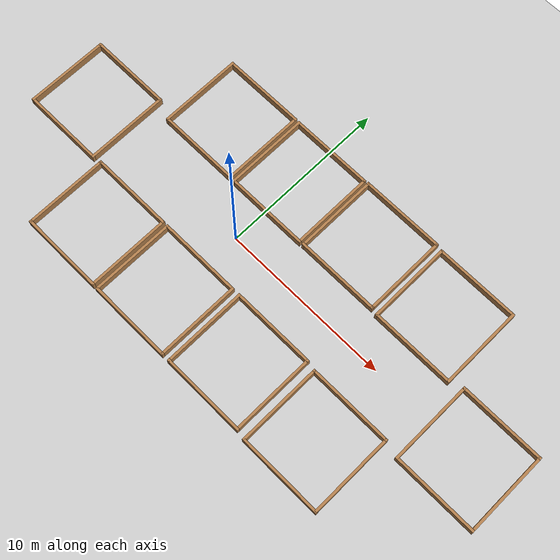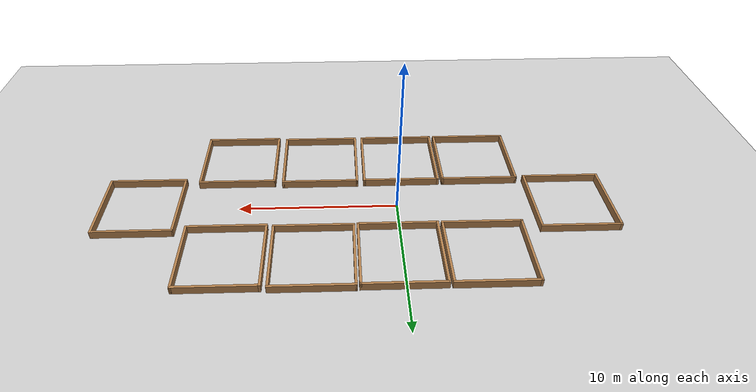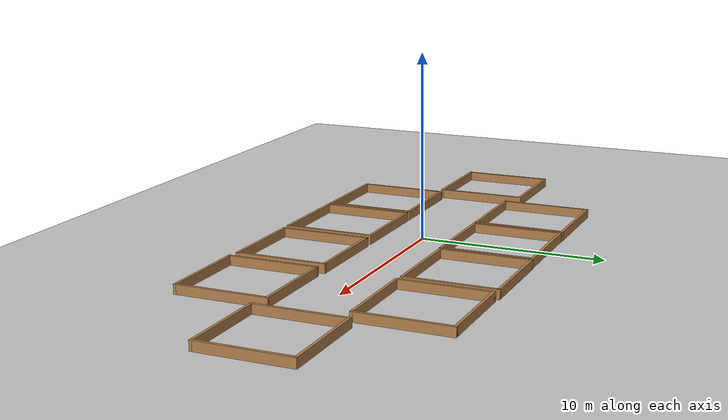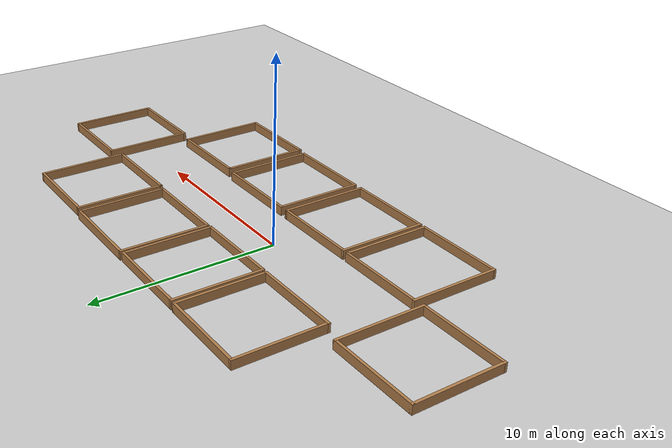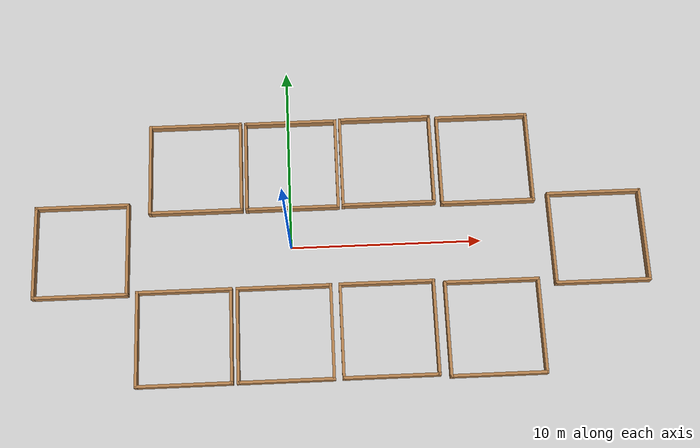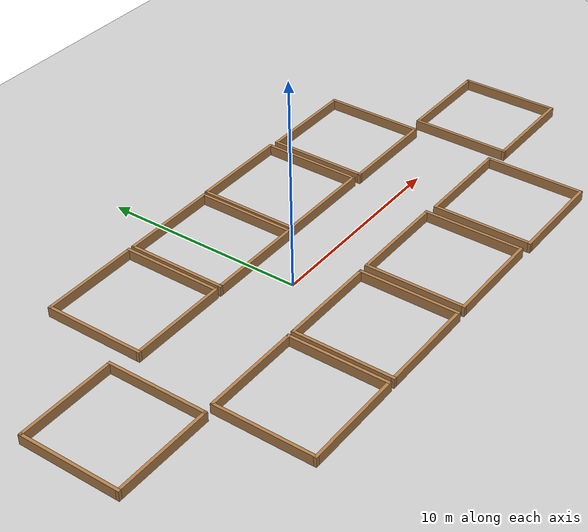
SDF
<sdf version="1.7">
 <world name="default">
  <model name="ground_plane">
   <static>1</static>
   <link name="link">
    <collision name="collision">
     <geometry><plane><normal>0 0 1</normal><size>100 100</size></plane></geometry>
     <surface><friction><ode><mu>100</mu><mu2>50</mu2></ode></friction></surface>
    </collision>
    <visual name="visual">
     <cast_shadows>0</cast_shadows>
     <geometry><plane><normal>0 0 1</normal><size>100 100</size></plane></geometry>
     <material>
      <script><uri>file://media/materials/scripts/gazebo.material</uri><name>Gazebo/Grey</name></script>
     </material>
    </visual>
   </link>
  </model>
  <light name="sun" type="directional">
   <pose>0 0 10 0 -0 0</pose>
   <diffuse>0.8 0.8 0.8 1</diffuse>
   <specular>0.2 0.2 0.2 1</specular>
   <attenuation>
    <range>1000</range>
    <constant>0.9</constant>
    <linear>0.01</linear>
    <quadratic>0.001</quadratic>
   </attenuation>
   <direction>-0.5 0.1 -0.9</direction>
   <spot><inner_angle>0</inner_angle><outer_angle>0</outer_angle><falloff>0</falloff></spot>
  </light>
  <scene><shadows>0</shadows><ambient>0.4 0.4 0.4 1</ambient><background>0.7 0.7 0.7 1</background></scene>
  <physics type="ode">
   <real_time_update_rate>1000</real_time_update_rate>
   <max_step_size>0.001</max_step_size>
   <real_time_factor>1</real_time_factor>
   <ode>
    <solver>
     <type>quick</type>
     <iters>150</iters>
     <precon_iters>0</precon_iters>
     <sor>1.4</sor>
     <use_dynamic_moi_rescaling>1</use_dynamic_moi_rescaling>
    </solver>
    <constraints>
     <cfm>1e-05</cfm>
     <erp>0.2</erp>
     <contact_max_correcting_vel>2000</contact_max_correcting_vel>
     <contact_surface_layer>0.01</contact_surface_layer>
    </constraints>
   </ode>
  </physics>
  <gravity>0 0 -9.8</gravity>
  <magnetic_field>6e-06 2.3e-05 -4.2e-05</magnetic_field>
  <atmosphere type="adiabatic"/>
  <spherical_coordinates>
   <surface_model>EARTH_WGS84</surface_model>
   <latitude_deg>0</latitude_deg>
   <longitude_deg>0</longitude_deg>
   <elevation>0</elevation>
   <heading_deg>0</heading_deg>
  </spherical_coordinates>
  <model name="turtlebot3_square">
   <pose>0.136843 4.53374 0 0 -0 0</pose>
   <link name="Wall_1">
    <collision name="Wall_1_Collision">
     <geometry><box><size>5 0.15 0.5</size></box></geometry>
     <pose>0 0 0.25 0 -0 0</pose>
    </collision>
    <visual name="Wall_1_Visual">
     <pose>0 0 0.25 0 -0 0</pose>
     <geometry><box><size>5 0.15 0.5</size></box></geometry>
     <material>
      <script><uri>file://media/materials/scripts/gazebo.material</uri><name>Gazebo/Wood</name></script>
      <ambient>1 1 1 1</ambient>
     </material>
    </visual>
    <pose>-2.425 0 0 0 -0 1.5708</pose>
   </link>
   <link name="Wall_2">
    <collision name="Wall_2_Collision">
     <geometry><box><size>5 0.15 0.5</size></box></geometry>
     <pose>0 0 0.25 0 -0 0</pose>
    </collision>
    <visual name="Wall_2_Visual">
     <pose>0 0 0.25 0 -0 0</pose>
     <geometry><box><size>5 0.15 0.5</size></box></geometry>
     <material>
      <script><uri>file://media/materials/scripts/gazebo.material</uri><name>Gazebo/Wood</name></script>
      <ambient>1 1 1 1</ambient>
     </material>
    </visual>
    <pose>0 2.425 0 0 -0 0</pose>
   </link>
   <link name="Wall_3">
    <collision name="Wall_3_Collision">
     <geometry><box><size>5 0.15 0.5</size></box></geometry>
     <pose>0 0 0.25 0 -0 0</pose>
    </collision>
    <visual name="Wall_3_Visual">
     <pose>0 0 0.25 0 -0 0</pose>
     <geometry><box><size>5 0.15 0.5</size></box></geometry>
     <material>
      <script><uri>file://media/materials/scripts/gazebo.material</uri><name>Gazebo/Wood</name></script>
      <ambient>1 1 1 1</ambient>
     </material>
    </visual>
    <pose>2.425 0 0 0 0 -1.5708</pose>
   </link>
   <link name="Wall_4">
    <collision name="Wall_4_Collision">
     <geometry><box><size>5 0.15 0.5</size></box></geometry>
     <pose>0 0 0.25 0 -0 0</pose>
    </collision>
    <visual name="Wall_4_Visual">
     <pose>0 0 0.25 0 -0 0</pose>
     <geometry><box><size>5 0.15 0.5</size></box></geometry>
     <material>
      <script><uri>file://media/materials/scripts/gazebo.material</uri><name>Gazebo/Wood</name></script>
      <ambient>1 1 1 1</ambient>
     </material>
    </visual>
    <pose>0 -2.425 0 0 -0 3.14159</pose>
   </link>
   <static>1</static>
  </model>
  <model name="turtlebot3_square_0">
   <pose>5.24502 4.57343 0 0 -0 0</pose>
   <link name="Wall_1">
    <collision name="Wall_1_Collision">
     <geometry><box><size>5 0.15 0.5</size></box></geometry>
     <pose>0 0 0.25 0 -0 0</pose>
    </collision>
    <visual name="Wall_1_Visual">
     <pose>0 0 0.25 0 -0 0</pose>
     <geometry><box><size>5 0.15 0.5</size></box></geometry>
     <material>
      <script><uri>file://media/materials/scripts/gazebo.material</uri><name>Gazebo/Wood</name></script>
      <ambient>1 1 1 1</ambient>
     </material>
    </visual>
    <pose>-2.425 0 0 0 -0 1.5708</pose>
   </link>
   <link name="Wall_2">
    <collision name="Wall_2_Collision">
     <geometry><box><size>5 0.15 0.5</size></box></geometry>
     <pose>0 0 0.25 0 -0 0</pose>
    </collision>
    <visual name="Wall_2_Visual">
     <pose>0 0 0.25 0 -0 0</pose>
     <geometry><box><size>5 0.15 0.5</size></box></geometry>
     <material>
      <script><uri>file://media/materials/scripts/gazebo.material</uri><name>Gazebo/Wood</name></script>
      <ambient>1 1 1 1</ambient>
     </material>
    </visual>
    <pose>0 2.425 0 0 -0 0</pose>
   </link>
   <link name="Wall_3">
    <collision name="Wall_3_Collision">
     <geometry><box><size>5 0.15 0.5</size></box></geometry>
     <pose>0 0 0.25 0 -0 0</pose>
    </collision>
    <visual name="Wall_3_Visual">
     <pose>0 0 0.25 0 -0 0</pose>
     <geometry><box><size>5 0.15 0.5</size></box></geometry>
     <material>
      <script><uri>file://media/materials/scripts/gazebo.material</uri><name>Gazebo/Wood</name></script>
      <ambient>1 1 1 1</ambient>
     </material>
    </visual>
    <pose>2.425 0 0 0 0 -1.5708</pose>
   </link>
   <link name="Wall_4">
    <collision name="Wall_4_Collision">
     <geometry><box><size>5 0.15 0.5</size></box></geometry>
     <pose>0 0 0.25 0 -0 0</pose>
    </collision>
    <visual name="Wall_4_Visual">
     <pose>0 0 0.25 0 -0 0</pose>
     <geometry><box><size>5 0.15 0.5</size></box></geometry>
     <material>
      <script><uri>file://media/materials/scripts/gazebo.material</uri><name>Gazebo/Wood</name></script>
      <ambient>1 1 1 1</ambient>
     </material>
    </visual>
    <pose>0 -2.425 0 0 -0 3.14159</pose>
   </link>
   <static>1</static>
  </model>
  <model name="turtlebot3_square_1">
   <pose>-4.9986 4.54813 0 0 -0 0</pose>
   <link name="Wall_1">
    <collision name="Wall_1_Collision">
     <geometry><box><size>5 0.15 0.5</size></box></geometry>
     <pose>0 0 0.25 0 -0 0</pose>
    </collision>
    <visual name="Wall_1_Visual">
     <pose>0 0 0.25 0 -0 0</pose>
     <geometry><box><size>5 0.15 0.5</size></box></geometry>
     <material>
      <script><uri>file://media/materials/scripts/gazebo.material</uri><name>Gazebo/Wood</name></script>
      <ambient>1 1 1 1</ambient>
     </material>
    </visual>
    <pose>-2.425 0 0 0 -0 1.5708</pose>
   </link>
   <link name="Wall_2">
    <collision name="Wall_2_Collision">
     <geometry><box><size>5 0.15 0.5</size></box></geometry>
     <pose>0 0 0.25 0 -0 0</pose>
    </collision>
    <visual name="Wall_2_Visual">
     <pose>0 0 0.25 0 -0 0</pose>
     <geometry><box><size>5 0.15 0.5</size></box></geometry>
     <material>
      <script><uri>file://media/materials/scripts/gazebo.material</uri><name>Gazebo/Wood</name></script>
      <ambient>1 1 1 1</ambient>
     </material>
    </visual>
    <pose>0 2.425 0 0 -0 0</pose>
   </link>
   <link name="Wall_3">
    <collision name="Wall_3_Collision">
     <geometry><box><size>5 0.15 0.5</size></box></geometry>
     <pose>0 0 0.25 0 -0 0</pose>
    </collision>
    <visual name="Wall_3_Visual">
     <pose>0 0 0.25 0 -0 0</pose>
     <geometry><box><size>5 0.15 0.5</size></box></geometry>
     <material>
      <script><uri>file://media/materials/scripts/gazebo.material</uri><name>Gazebo/Wood</name></script>
      <ambient>1 1 1 1</ambient>
     </material>
    </visual>
    <pose>2.425 0 0 0 0 -1.5708</pose>
   </link>
   <link name="Wall_4">
    <collision name="Wall_4_Collision">
     <geometry><box><size>5 0.15 0.5</size></box></geometry>
     <pose>0 0 0.25 0 -0 0</pose>
    </collision>
    <visual name="Wall_4_Visual">
     <pose>0 0 0.25 0 -0 0</pose>
     <geometry><box><size>5 0.15 0.5</size></box></geometry>
     <material>
      <script><uri>file://media/materials/scripts/gazebo.material</uri><name>Gazebo/Wood</name></script>
      <ambient>1 1 1 1</ambient>
     </material>
    </visual>
    <pose>0 -2.425 0 0 -0 3.14159</pose>
   </link>
   <static>1</static>
  </model>
  <model name="turtlebot3_square_2">
   <pose>4.90179 -4.56461 0 0 -0 0</pose>
   <link name="Wall_1">
    <collision name="Wall_1_Collision">
     <geometry><box><size>5 0.15 0.5</size></box></geometry>
     <pose>0 0 0.25 0 -0 0</pose>
    </collision>
    <visual name="Wall_1_Visual">
     <pose>0 0 0.25 0 -0 0</pose>
     <geometry><box><size>5 0.15 0.5</size></box></geometry>
     <material>
      <script><uri>file://media/materials/scripts/gazebo.material</uri><name>Gazebo/Wood</name></script>
      <ambient>1 1 1 1</ambient>
     </material>
    </visual>
    <pose>-2.425 0 0 0 -0 1.5708</pose>
   </link>
   <link name="Wall_2">
    <collision name="Wall_2_Collision">
     <geometry><box><size>5 0.15 0.5</size></box></geometry>
     <pose>0 0 0.25 0 -0 0</pose>
    </collision>
    <visual name="Wall_2_Visual">
     <pose>0 0 0.25 0 -0 0</pose>
     <geometry><box><size>5 0.15 0.5</size></box></geometry>
     <material>
      <script><uri>file://media/materials/scripts/gazebo.material</uri><name>Gazebo/Wood</name></script>
      <ambient>1 1 1 1</ambient>
     </material>
    </visual>
    <pose>0 2.425 0 0 -0 0</pose>
   </link>
   <link name="Wall_3">
    <collision name="Wall_3_Collision">
     <geometry><box><size>5 0.15 0.5</size></box></geometry>
     <pose>0 0 0.25 0 -0 0</pose>
    </collision>
    <visual name="Wall_3_Visual">
     <pose>0 0 0.25 0 -0 0</pose>
     <geometry><box><size>5 0.15 0.5</size></box></geometry>
     <material>
      <script><uri>file://media/materials/scripts/gazebo.material</uri><name>Gazebo/Wood</name></script>
      <ambient>1 1 1 1</ambient>
     </material>
    </visual>
    <pose>2.425 0 0 0 0 -1.5708</pose>
   </link>
   <link name="Wall_4">
    <collision name="Wall_4_Collision">
     <geometry><box><size>5 0.15 0.5</size></box></geometry>
     <pose>0 0 0.25 0 -0 0</pose>
    </collision>
    <visual name="Wall_4_Visual">
     <pose>0 0 0.25 0 -0 0</pose>
     <geometry><box><size>5 0.15 0.5</size></box></geometry>
     <material>
      <script><uri>file://media/materials/scripts/gazebo.material</uri><name>Gazebo/Wood</name></script>
      <ambient>1 1 1 1</ambient>
     </material>
    </visual>
    <pose>0 -2.425 0 0 -0 3.14159</pose>
   </link>
   <static>1</static>
  </model>
  <model name="turtlebot3_square_3">
   <pose>-0.435755 -4.57942 0 0 -0 0</pose>
   <link name="Wall_1">
    <collision name="Wall_1_Collision">
     <geometry><box><size>5 0.15 0.5</size></box></geometry>
     <pose>0 0 0.25 0 -0 0</pose>
    </collision>
    <visual name="Wall_1_Visual">
     <pose>0 0 0.25 0 -0 0</pose>
     <geometry><box><size>5 0.15 0.5</size></box></geometry>
     <material>
      <script><uri>file://media/materials/scripts/gazebo.material</uri><name>Gazebo/Wood</name></script>
      <ambient>1 1 1 1</ambient>
     </material>
    </visual>
    <pose>-2.425 0 0 0 -0 1.5708</pose>
   </link>
   <link name="Wall_2">
    <collision name="Wall_2_Collision">
     <geometry><box><size>5 0.15 0.5</size></box></geometry>
     <pose>0 0 0.25 0 -0 0</pose>
    </collision>
    <visual name="Wall_2_Visual">
     <pose>0 0 0.25 0 -0 0</pose>
     <geometry><box><size>5 0.15 0.5</size></box></geometry>
     <material>
      <script><uri>file://media/materials/scripts/gazebo.material</uri><name>Gazebo/Wood</name></script>
      <ambient>1 1 1 1</ambient>
     </material>
    </visual>
    <pose>0 2.425 0 0 -0 0</pose>
   </link>
   <link name="Wall_3">
    <collision name="Wall_3_Collision">
     <geometry><box><size>5 0.15 0.5</size></box></geometry>
     <pose>0 0 0.25 0 -0 0</pose>
    </collision>
    <visual name="Wall_3_Visual">
     <pose>0 0 0.25 0 -0 0</pose>
     <geometry><box><size>5 0.15 0.5</size></box></geometry>
     <material>
      <script><uri>file://media/materials/scripts/gazebo.material</uri><name>Gazebo/Wood</name></script>
      <ambient>1 1 1 1</ambient>
     </material>
    </visual>
    <pose>2.425 0 0 0 0 -1.5708</pose>
   </link>
   <link name="Wall_4">
    <collision name="Wall_4_Collision">
     <geometry><box><size>5 0.15 0.5</size></box></geometry>
     <pose>0 0 0.25 0 -0 0</pose>
    </collision>
    <visual name="Wall_4_Visual">
     <pose>0 0 0.25 0 -0 0</pose>
     <geometry><box><size>5 0.15 0.5</size></box></geometry>
     <material>
      <script><uri>file://media/materials/scripts/gazebo.material</uri><name>Gazebo/Wood</name></script>
      <ambient>1 1 1 1</ambient>
     </material>
    </visual>
    <pose>0 -2.425 0 0 -0 3.14159</pose>
   </link>
   <static>1</static>
  </model>
  <model name="turtlebot3_square_4">
   <pose>-5.61453 -4.57949 0 0 -0 0</pose>
   <link name="Wall_1">
    <collision name="Wall_1_Collision">
     <geometry><box><size>5 0.15 0.5</size></box></geometry>
     <pose>0 0 0.25 0 -0 0</pose>
    </collision>
    <visual name="Wall_1_Visual">
     <pose>0 0 0.25 0 -0 0</pose>
     <geometry><box><size>5 0.15 0.5</size></box></geometry>
     <material>
      <script><uri>file://media/materials/scripts/gazebo.material</uri><name>Gazebo/Wood</name></script>
      <ambient>1 1 1 1</ambient>
     </material>
    </visual>
    <pose>-2.425 0 0 0 -0 1.5708</pose>
   </link>
   <link name="Wall_2">
    <collision name="Wall_2_Collision">
     <geometry><box><size>5 0.15 0.5</size></box></geometry>
     <pose>0 0 0.25 0 -0 0</pose>
    </collision>
    <visual name="Wall_2_Visual">
     <pose>0 0 0.25 0 -0 0</pose>
     <geometry><box><size>5 0.15 0.5</size></box></geometry>
     <material>
      <script><uri>file://media/materials/scripts/gazebo.material</uri><name>Gazebo/Wood</name></script>
      <ambient>1 1 1 1</ambient>
     </material>
    </visual>
    <pose>0 2.425 0 0 -0 0</pose>
   </link>
   <link name="Wall_3">
    <collision name="Wall_3_Collision">
     <geometry><box><size>5 0.15 0.5</size></box></geometry>
     <pose>0 0 0.25 0 -0 0</pose>
    </collision>
    <visual name="Wall_3_Visual">
     <pose>0 0 0.25 0 -0 0</pose>
     <geometry><box><size>5 0.15 0.5</size></box></geometry>
     <material>
      <script><uri>file://media/materials/scripts/gazebo.material</uri><name>Gazebo/Wood</name></script>
      <ambient>1 1 1 1</ambient>
     </material>
    </visual>
    <pose>2.425 0 0 0 0 -1.5708</pose>
   </link>
   <link name="Wall_4">
    <collision name="Wall_4_Collision">
     <geometry><box><size>5 0.15 0.5</size></box></geometry>
     <pose>0 0 0.25 0 -0 0</pose>
    </collision>
    <visual name="Wall_4_Visual">
     <pose>0 0 0.25 0 -0 0</pose>
     <geometry><box><size>5 0.15 0.5</size></box></geometry>
     <material>
      <script><uri>file://media/materials/scripts/gazebo.material</uri><name>Gazebo/Wood</name></script>
      <ambient>1 1 1 1</ambient>
     </material>
    </visual>
    <pose>0 -2.425 0 0 -0 3.14159</pose>
   </link>
   <static>1</static>
  </model>
  <model name="turtlebot3_square_5">
   <pose>10.5134 4.47502 0 0 -0 0</pose>
   <link name="Wall_1">
    <collision name="Wall_1_Collision">
     <geometry><box><size>5 0.15 0.5</size></box></geometry>
     <pose>0 0 0.25 0 -0 0</pose>
    </collision>
    <visual name="Wall_1_Visual">
     <pose>0 0 0.25 0 -0 0</pose>
     <geometry><box><size>5 0.15 0.5</size></box></geometry>
     <material>
      <script><uri>file://media/materials/scripts/gazebo.material</uri><name>Gazebo/Wood</name></script>
      <ambient>1 1 1 1</ambient>
     </material>
    </visual>
    <pose>-2.425 0 0 0 -0 1.5708</pose>
   </link>
   <link name="Wall_2">
    <collision name="Wall_2_Collision">
     <geometry><box><size>5 0.15 0.5</size></box></geometry>
     <pose>0 0 0.25 0 -0 0</pose>
    </collision>
    <visual name="Wall_2_Visual">
     <pose>0 0 0.25 0 -0 0</pose>
     <geometry><box><size>5 0.15 0.5</size></box></geometry>
     <material>
      <script><uri>file://media/materials/scripts/gazebo.material</uri><name>Gazebo/Wood</name></script>
      <ambient>1 1 1 1</ambient>
     </material>
    </visual>
    <pose>0 2.425 0 0 -0 0</pose>
   </link>
   <link name="Wall_3">
    <collision name="Wall_3_Collision">
     <geometry><box><size>5 0.15 0.5</size></box></geometry>
     <pose>0 0 0.25 0 -0 0</pose>
    </collision>
    <visual name="Wall_3_Visual">
     <pose>0 0 0.25 0 -0 0</pose>
     <geometry><box><size>5 0.15 0.5</size></box></geometry>
     <material>
      <script><uri>file://media/materials/scripts/gazebo.material</uri><name>Gazebo/Wood</name></script>
      <ambient>1 1 1 1</ambient>
     </material>
    </visual>
    <pose>2.425 0 0 0 0 -1.5708</pose>
   </link>
   <link name="Wall_4">
    <collision name="Wall_4_Collision">
     <geometry><box><size>5 0.15 0.5</size></box></geometry>
     <pose>0 0 0.25 0 -0 0</pose>
    </collision>
    <visual name="Wall_4_Visual">
     <pose>0 0 0.25 0 -0 0</pose>
     <geometry><box><size>5 0.15 0.5</size></box></geometry>
     <material>
      <script><uri>file://media/materials/scripts/gazebo.material</uri><name>Gazebo/Wood</name></script>
      <ambient>1 1 1 1</ambient>
     </material>
    </visual>
    <pose>0 -2.425 0 0 -0 3.14159</pose>
   </link>
   <static>1</static>
  </model>
  <model name="turtlebot3_square_6">
   <pose>16.1527 -0.089655 0 0 -0 0</pose>
   <link name="Wall_1">
    <collision name="Wall_1_Collision">
     <geometry><box><size>5 0.15 0.5</size></box></geometry>
     <pose>0 0 0.25 0 -0 0</pose>
    </collision>
    <visual name="Wall_1_Visual">
     <pose>0 0 0.25 0 -0 0</pose>
     <geometry><box><size>5 0.15 0.5</size></box></geometry>
     <material>
      <script><uri>file://media/materials/scripts/gazebo.material</uri><name>Gazebo/Wood</name></script>
      <ambient>1 1 1 1</ambient>
     </material>
    </visual>
    <pose>-2.425 0 0 0 -0 1.5708</pose>
   </link>
   <link name="Wall_2">
    <collision name="Wall_2_Collision">
     <geometry><box><size>5 0.15 0.5</size></box></geometry>
     <pose>0 0 0.25 0 -0 0</pose>
    </collision>
    <visual name="Wall_2_Visual">
     <pose>0 0 0.25 0 -0 0</pose>
     <geometry><box><size>5 0.15 0.5</size></box></geometry>
     <material>
      <script><uri>file://media/materials/scripts/gazebo.material</uri><name>Gazebo/Wood</name></script>
      <ambient>1 1 1 1</ambient>
     </material>
    </visual>
    <pose>0 2.425 0 0 -0 0</pose>
   </link>
   <link name="Wall_3">
    <collision name="Wall_3_Collision">
     <geometry><box><size>5 0.15 0.5</size></box></geometry>
     <pose>0 0 0.25 0 -0 0</pose>
    </collision>
    <visual name="Wall_3_Visual">
     <pose>0 0 0.25 0 -0 0</pose>
     <geometry><box><size>5 0.15 0.5</size></box></geometry>
     <material>
      <script><uri>file://media/materials/scripts/gazebo.material</uri><name>Gazebo/Wood</name></script>
      <ambient>1 1 1 1</ambient>
     </material>
    </visual>
    <pose>2.425 0 0 0 0 -1.5708</pose>
   </link>
   <link name="Wall_4">
    <collision name="Wall_4_Collision">
     <geometry><box><size>5 0.15 0.5</size></box></geometry>
     <pose>0 0 0.25 0 -0 0</pose>
    </collision>
    <visual name="Wall_4_Visual">
     <pose>0 0 0.25 0 -0 0</pose>
     <geometry><box><size>5 0.15 0.5</size></box></geometry>
     <material>
      <script><uri>file://media/materials/scripts/gazebo.material</uri><name>Gazebo/Wood</name></script>
      <ambient>1 1 1 1</ambient>
     </material>
    </visual>
    <pose>0 -2.425 0 0 -0 3.14159</pose>
   </link>
   <static>1</static>
  </model>
  <model name="turtlebot3_square_7">
   <pose>10.3438 -4.68471 0 0 -0 0</pose>
   <link name="Wall_1">
    <collision name="Wall_1_Collision">
     <geometry><box><size>5 0.15 0.5</size></box></geometry>
     <pose>0 0 0.25 0 -0 0</pose>
    </collision>
    <visual name="Wall_1_Visual">
     <pose>0 0 0.25 0 -0 0</pose>
     <geometry><box><size>5 0.15 0.5</size></box></geometry>
     <material>
      <script><uri>file://media/materials/scripts/gazebo.material</uri><name>Gazebo/Wood</name></script>
      <ambient>1 1 1 1</ambient>
     </material>
    </visual>
    <pose>-2.425 0 0 0 -0 1.5708</pose>
   </link>
   <link name="Wall_2">
    <collision name="Wall_2_Collision">
     <geometry><box><size>5 0.15 0.5</size></box></geometry>
     <pose>0 0 0.25 0 -0 0</pose>
    </collision>
    <visual name="Wall_2_Visual">
     <pose>0 0 0.25 0 -0 0</pose>
     <geometry><box><size>5 0.15 0.5</size></box></geometry>
     <material>
      <script><uri>file://media/materials/scripts/gazebo.material</uri><name>Gazebo/Wood</name></script>
      <ambient>1 1 1 1</ambient>
     </material>
    </visual>
    <pose>0 2.425 0 0 -0 0</pose>
   </link>
   <link name="Wall_3">
    <collision name="Wall_3_Collision">
     <geometry><box><size>5 0.15 0.5</size></box></geometry>
     <pose>0 0 0.25 0 -0 0</pose>
    </collision>
    <visual name="Wall_3_Visual">
     <pose>0 0 0.25 0 -0 0</pose>
     <geometry><box><size>5 0.15 0.5</size></box></geometry>
     <material>
      <script><uri>file://media/materials/scripts/gazebo.material</uri><name>Gazebo/Wood</name></script>
      <ambient>1 1 1 1</ambient>
     </material>
    </visual>
    <pose>2.425 0 0 0 0 -1.5708</pose>
   </link>
   <link name="Wall_4">
    <collision name="Wall_4_Collision">
     <geometry><box><size>5 0.15 0.5</size></box></geometry>
     <pose>0 0 0.25 0 -0 0</pose>
    </collision>
    <visual name="Wall_4_Visual">
     <pose>0 0 0.25 0 -0 0</pose>
     <geometry><box><size>5 0.15 0.5</size></box></geometry>
     <material>
      <script><uri>file://media/materials/scripts/gazebo.material</uri><name>Gazebo/Wood</name></script>
      <ambient>1 1 1 1</ambient>
     </material>
    </visual>
    <pose>0 -2.425 0 0 -0 3.14159</pose>
   </link>
   <static>1</static>
  </model>
  <model name="turtlebot3_square_8">
   <pose>-11.0058 0.195838 0 0 -0 0</pose>
   <link name="Wall_1">
    <collision name="Wall_1_Collision">
     <geometry><box><size>5 0.15 0.5</size></box></geometry>
     <pose>0 0 0.25 0 -0 0</pose>
    </collision>
    <visual name="Wall_1_Visual">
     <pose>0 0 0.25 0 -0 0</pose>
     <geometry><box><size>5 0.15 0.5</size></box></geometry>
     <material>
      <script><uri>file://media/materials/scripts/gazebo.material</uri><name>Gazebo/Wood</name></script>
      <ambient>1 1 1 1</ambient>
     </material>
    </visual>
    <pose>-2.425 0 0 0 -0 1.5708</pose>
   </link>
   <link name="Wall_2">
    <collision name="Wall_2_Collision">
     <geometry><box><size>5 0.15 0.5</size></box></geometry>
     <pose>0 0 0.25 0 -0 0</pose>
    </collision>
    <visual name="Wall_2_Visual">
     <pose>0 0 0.25 0 -0 0</pose>
     <geometry><box><size>5 0.15 0.5</size></box></geometry>
     <material>
      <script><uri>file://media/materials/scripts/gazebo.material</uri><name>Gazebo/Wood</name></script>
      <ambient>1 1 1 1</ambient>
     </material>
    </visual>
    <pose>0 2.425 0 0 -0 0</pose>
   </link>
   <link name="Wall_3">
    <collision name="Wall_3_Collision">
     <geometry><box><size>5 0.15 0.5</size></box></geometry>
     <pose>0 0 0.25 0 -0 0</pose>
    </collision>
    <visual name="Wall_3_Visual">
     <pose>0 0 0.25 0 -0 0</pose>
     <geometry><box><size>5 0.15 0.5</size></box></geometry>
     <material>
      <script><uri>file://media/materials/scripts/gazebo.material</uri><name>Gazebo/Wood</name></script>
      <ambient>1 1 1 1</ambient>
     </material>
    </visual>
    <pose>2.425 0 0 0 0 -1.5708</pose>
   </link>
   <link name="Wall_4">
    <collision name="Wall_4_Collision">
     <geometry><box><size>5 0.15 0.5</size></box></geometry>
     <pose>0 0 0.25 0 -0 0</pose>
    </collision>
    <visual name="Wall_4_Visual">
     <pose>0 0 0.25 0 -0 0</pose>
     <geometry><box><size>5 0.15 0.5</size></box></geometry>
     <material>
      <script><uri>file://media/materials/scripts/gazebo.material</uri><name>Gazebo/Wood</name></script>
      <ambient>1 1 1 1</ambient>
     </material>
    </visual>
    <pose>0 -2.425 0 0 -0 3.14159</pose>
   </link>
   <static>1</static>
  </model>
 </world>
</sdf>
